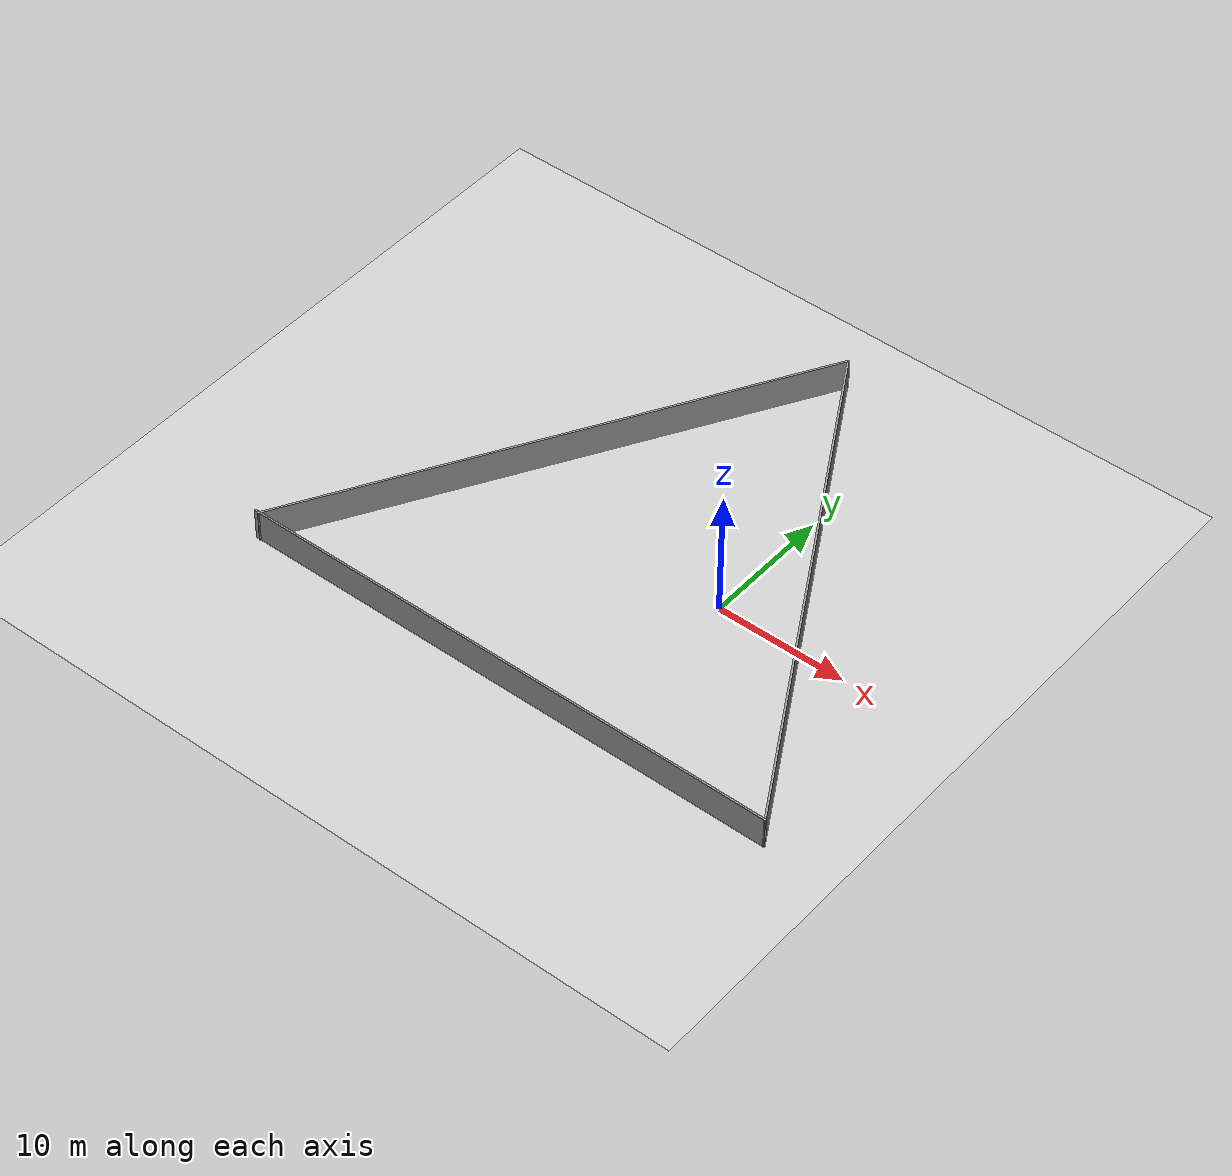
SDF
<sdf version="1.7">
 <world name="default">
  <light name="sun" type="directional">
   <pose>0 0 10 0 -0 0</pose>
   <diffuse>0.8 0.8 0.8 1</diffuse>
   <specular>0.2 0.2 0.2 1</specular>
   <attenuation>
    <range>1000</range>
    <constant>0.9</constant>
    <linear>0.01</linear>
    <quadratic>0.001</quadratic>
   </attenuation>
   <direction>-0.5 0.1 -0.9</direction>
   <spot><inner_angle>0</inner_angle><outer_angle>0</outer_angle><falloff>0</falloff></spot>
  </light>
  <model name="ground_plane">
   <static>1</static>
   <link name="link">
    <collision name="collision">
     <geometry><plane><normal>0 0 1</normal><size>100 100</size></plane></geometry>
     <surface>
      <contact><collide_bitmask>65535</collide_bitmask></contact>
      <friction><ode><mu>100</mu><mu2>50</mu2></ode></friction>
     </surface>
    </collision>
    <visual name="visual">
     <cast_shadows>0</cast_shadows>
     <geometry><plane><normal>0 0 1</normal><size>100 100</size></plane></geometry>
     <material>
      <script><uri>file://media/materials/scripts/gazebo.material</uri><name>Gazebo/Grey</name></script>
     </material>
    </visual>
   </link>
  </model>
  <gravity>0 0 -9.8</gravity>
  <magnetic_field>6e-06 2.3e-05 -4.2e-05</magnetic_field>
  <atmosphere type="adiabatic"/>
  <physics type="ode">
   <max_step_size>0.001</max_step_size>
   <real_time_factor>1</real_time_factor>
   <real_time_update_rate>1000</real_time_update_rate>
  </physics>
  <scene><ambient>0.4 0.4 0.4 1</ambient><background>0.7 0.7 0.7 1</background><shadows>1</shadows></scene>
  <audio><device>default</device></audio>
  <spherical_coordinates>
   <surface_model>EARTH_WGS84</surface_model>
   <latitude_deg>0</latitude_deg>
   <longitude_deg>0</longitude_deg>
   <elevation>0</elevation>
   <heading_deg>0</heading_deg>
  </spherical_coordinates>
  <model name="Untitled3453">
   <pose>-6.51347 3.93864 0 0 -0 0</pose>
   <link name="Wall_11">
    <collision name="Wall_11_Collision">
     <geometry><box><size>42.25 0.15 2.5</size></box></geometry>
     <pose>0 0 1.25 0 -0 0</pose>
    </collision>
    <visual name="Wall_11_Visual">
     <pose>0 0 1.25 0 -0 0</pose>
     <geometry><box><size>42.25 0.15 2.5</size></box></geometry>
     <material>
      <script><uri>file://media/materials/scripts/gazebo.material</uri><name>Gazebo/Grey</name></script>
      <ambient>1 1 1 1</ambient>
     </material>
     <meta><layer>0</layer></meta>
    </visual>
    <pose>-10.3674 0 0 0 -0 1.0472</pose>
   </link>
   <link name="Wall_13">
    <collision name="Wall_13_Collision">
     <geometry><box><size>42.5 0.15 2.5</size></box></geometry>
     <pose>0 0 1.25 0 -0 0</pose>
    </collision>
    <visual name="Wall_13_Visual">
     <pose>0 0 1.25 0 -0 0</pose>
     <geometry><box><size>42.5 0.15 2.5</size></box></geometry>
     <material>
      <script><uri>file://media/materials/scripts/gazebo.material</uri><name>Gazebo/Grey</name></script>
      <ambient>1 1 1 1</ambient>
     </material>
     <meta><layer>0</layer></meta>
    </visual>
    <pose>-0.013726 -18.1846 0 0 -0 3.14159</pose>
   </link>
   <link name="Wall_3">
    <collision name="Wall_3_Collision">
     <geometry><box><size>42 0.15 2.5</size></box></geometry>
     <pose>0 0 1.25 0 -0 0</pose>
    </collision>
    <visual name="Wall_3_Visual">
     <pose>0 0 1.25 0 -0 0</pose>
     <geometry><box><size>42 0.15 2.5</size></box></geometry>
     <material>
      <script><uri>file://media/materials/scripts/gazebo.material</uri><name>Gazebo/Grey</name></script>
      <ambient>1 1 1 1</ambient>
     </material>
     <meta><layer>0</layer></meta>
    </visual>
    <pose>10.6988 -0.063007 0 0 -0 2.0944</pose>
   </link>
   <static>1</static>
  </model>
  <model name="dummy_robot">
   <static>true</static>
   <pose>-35 -25 0 0 0 0</pose>
   <link name="link">
    <collision name="collision">
     <geometry><cylinder><radius>0.01</radius><length>0.01</length></cylinder></geometry>
    </collision>
    <visual name="visual">
     <geometry><cylinder><radius>0.01</radius><length>0.01</length></cylinder></geometry>
    </visual>
   </link>
  </model>
 </world>
</sdf>
